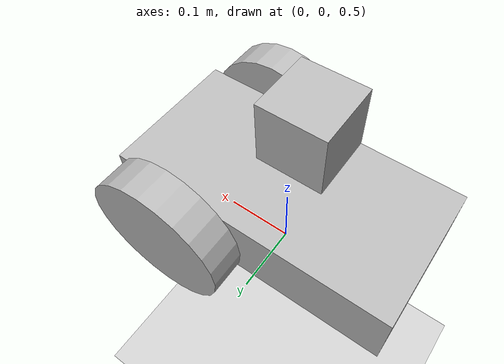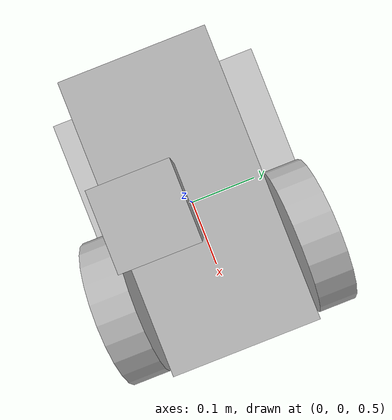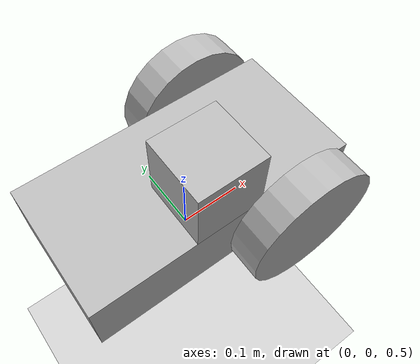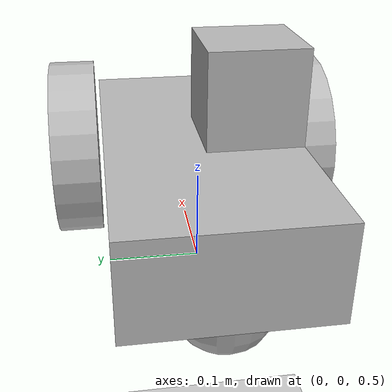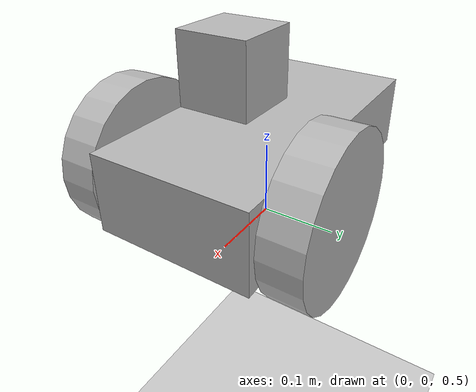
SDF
<?xml version="1.0"?>
<sdf version="1.4">
  <world name="default">

    <!-- Ground Plane -->
    <include>
      <uri>model://ground_plane</uri>
    </include>

    <include>
      <uri>model://sun</uri>
    </include>

    <model name="DiffDrive">
      <include>
        <uri>model://diff_drive_robot</uri>
      </include>
      <pose>0 0 0.5 0 0 0</pose>
      <plugin name="model_diff_drive" filename="build/libmodel_diff_drive.so"/>
    </model>
  </world>
</sdf>

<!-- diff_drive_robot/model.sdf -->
<sdf version='1.4'>
  <model name="diff_drive_robot">
<!-- No Physics -->

<!-- Physics -->
    <static>false</static>
<!-- Box/Chasis -->
     <link name='chassis'>
        <pose>0 0 .1 0 0 0</pose>

        <collision name='collision'>
          <geometry>
            <box>
              <size>.4 .2 .1</size>
            </box>
          </geometry>
        </collision>

        <visual name='visual'>
          <geometry>
            <box>
              <size>.4 .2 .1</size>
            </box>
          </geometry>
        </visual>

<!-- Caster -->
      <collision name='caster_collision'>
        <pose>-0.15 0 -0.05 0 0 0</pose>
        <geometry>
          <sphere>
          <radius>.05</radius>
        </sphere>
      </geometry>

      <surface>
        <friction>
          <ode>
            <mu>0</mu>
            <mu2>0</mu2>
            <slip1>1.0</slip1>
            <slip2>1.0</slip2>
          </ode>
        </friction>
      </surface>
    </collision>

    <visual name='caster_visual'>
      <pose>-0.15 0 -0.05 0 0 0</pose>
      <geometry>
        <sphere>
          <radius>.05</radius>
        </sphere>
      </geometry>
    </visual>

  </link>

<!-- Left Wheel -->

  <link name="left_wheel">
    <pose>0.1 0.13 0.1 0 1.5707 1.5707</pose>
    <collision name="collision">
      <geometry>
        <cylinder>
          <radius>.1</radius>
          <length>.05</length>
        </cylinder>
      </geometry>
    </collision>
    <visual name="visual">
      <geometry>
        <cylinder>
          <radius>.1</radius>
          <length>.05</length>
        </cylinder>
      </geometry>
    </visual>
  </link>

<!-- Right Wheel -->
  <link name="right_wheel">
    <pose>0.1 -0.13 0.1 0 1.5707 1.5707</pose>
    <collision name="collision">
      <geometry>
        <cylinder>
          <radius>.1</radius>
          <length>.05</length>
        </cylinder>
      </geometry>
    </collision>
    <visual name="visual">
      <geometry>
        <cylinder>
          <radius>.1</radius>
          <length>.05</length>
        </cylinder>
      </geometry>
    </visual>
  </link>

<!-- Axel -->
<joint type="revolute" name="left_wheel_hinge">
    <pose>0 0 -0.03 0 0 0</pose>
    <child>left_wheel</child>
    <parent>chassis</parent>
    <axis>
      <xyz>0 1 0</xyz>
    </axis>
  </joint>

  <joint type="revolute" name="right_wheel_hinge">
    <pose>0 0 0.03 0 0 0</pose>
    <child>right_wheel</child>
    <parent>chassis</parent>
    <axis>
      <xyz>0 1 0</xyz>
    </axis>
  </joint>

<!-- Lidar -->

  <!-- Camera -->
   <include>
      <uri>model://camera</uri>
      <pose>0.0 -0.05 0.2 0 0 0</pose>
      <name>camera</name>
    </include>
<joint name="camera_joint" type="revolute">
  <child>camera::link</child>
  <parent>chassis</parent>
  <axis>
    <xyz>0 0 1</xyz>
    <limit>
      <upper>0</upper>
      <lower>0</lower>
    </limit>
  </axis>
</joint>
  </model>
</sdf>

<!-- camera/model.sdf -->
<sdf version="1.5">
  <model name="camera">
    <pose>0 0 0.05 0 0 0</pose>
    <link name="link">
      <inertial>
        <mass>0.1</mass>
        <inertia>
          <ixx>0.000166667</ixx>
          <iyy>0.000166667</iyy>
          <izz>0.000166667</izz>
        </inertia>
      </inertial>
      <collision name="collision">
        <geometry>
          <box>
            <size>0.1 0.1 0.1</size>
          </box>
        </geometry>
      </collision>
      <visual name="visual">
        <geometry>
          <box>
            <size>0.1 0.1 0.1</size>
          </box>
        </geometry>
      </visual>
      <sensor name="camera" type="camera">
        <camera>
          <horizontal_fov>1.047</horizontal_fov>
          <image>
            <width>320</width>
            <height>240</height>
          </image>
          <clip>
            <near>0.1</near>
            <far>100</far>
          </clip>
        </camera>
        <always_on>1</always_on>
        <update_rate>30</update_rate>
        <visualize>true</visualize>
      </sensor>
    </link>
  </model>
</sdf>
